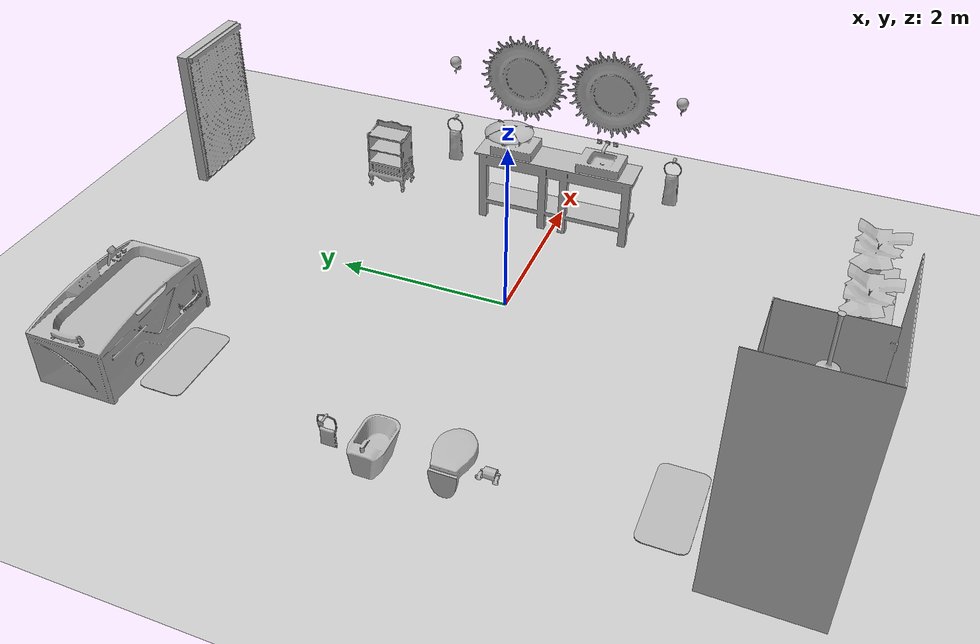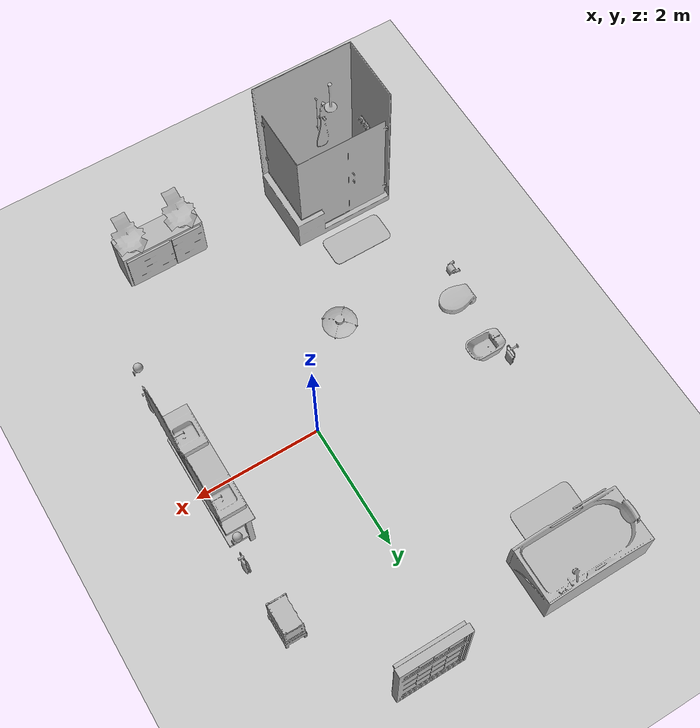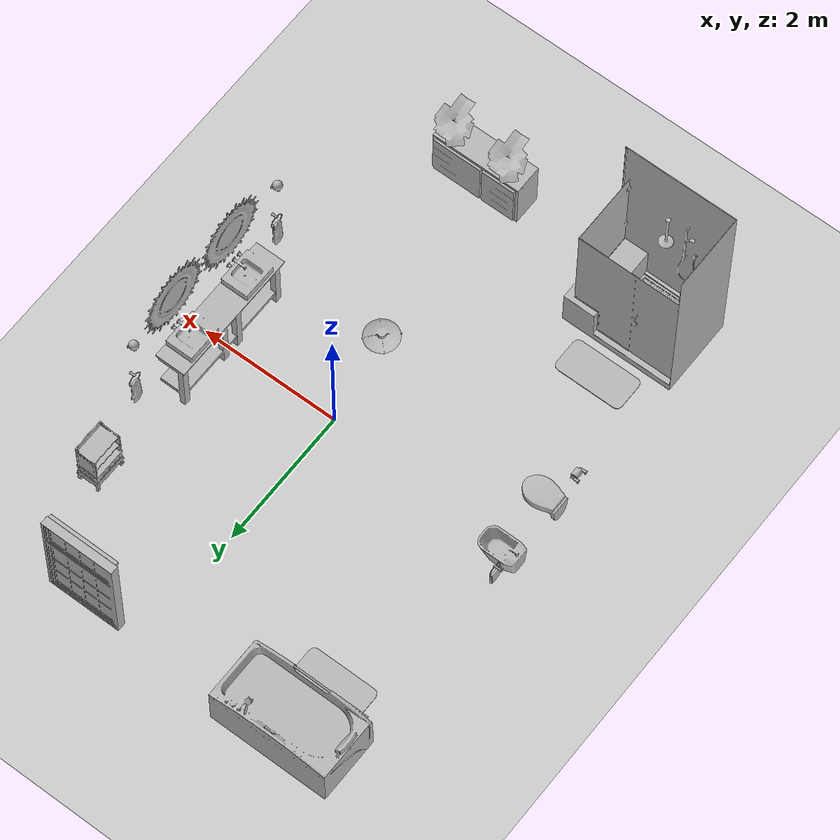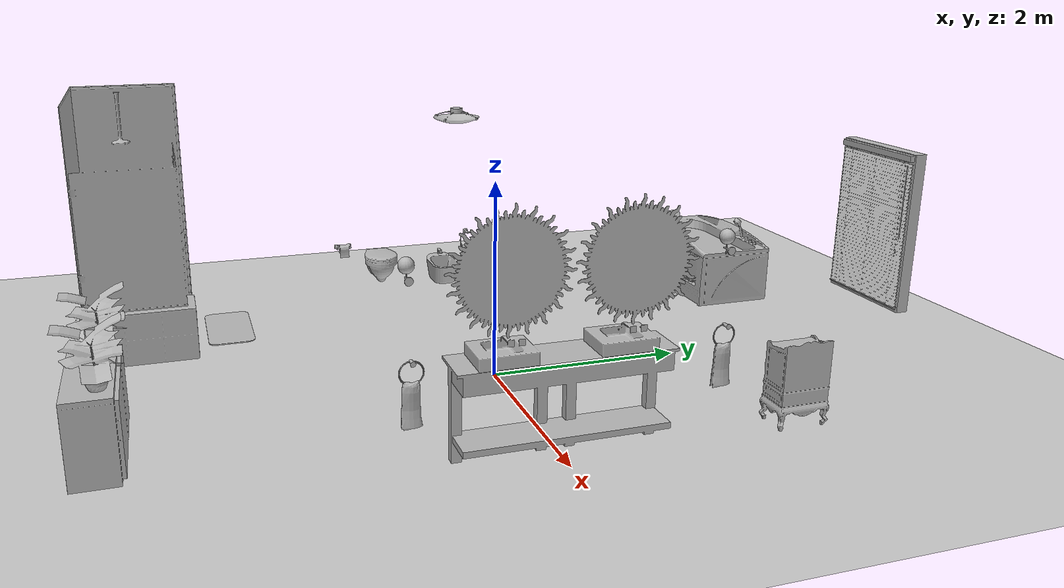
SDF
<sdf version="1.4">
 <world name="default">
  <light name="sun" type="directional">
   <pose>0 0 10 0 -0 0</pose>
   <diffuse>0.8 0.8 0.8 1</diffuse>
   <specular>0.2 0.2 0.2 1</specular>
   <attenuation>
    <range>1000</range>
    <constant>0.9</constant>
    <linear>0.01</linear>
    <quadratic>0.001</quadratic>
   </attenuation>
   <direction>-0.5 0.1 -0.9</direction>
  </light>
  <model name="ground_plane">
   <static>1</static>
   <link name="link">
    <collision name="collision">
     <geometry><plane><normal>0 0 1</normal><size>100 100</size></plane></geometry>
     <surface><friction><ode><mu>100</mu><mu2>50</mu2></ode></friction></surface>
    </collision>
    <visual name="visual">
     <cast_shadows>0</cast_shadows>
     <geometry><plane><normal>0 0 1</normal><size>100 100</size></plane></geometry>
     <material>
      <script><uri>file://media/materials/scripts/gazebo.material</uri><name>Gazebo/Grey</name></script>
     </material>
    </visual>
    <velocity_decay><linear>0</linear><angular>0</angular></velocity_decay>
   </link>
  </model>
  <physics type="ode">
   <max_step_size>0.001</max_step_size>
   <real_time_factor>1</real_time_factor>
   <real_time_update_rate>1000</real_time_update_rate>
   <gravity>0 0 -9.8</gravity>
  </physics>
  <scene><ambient>0.4 0.4 0.4 1</ambient><background>0.7 0.7 0.7 1</background><shadows>1</shadows></scene>
  <spherical_coordinates>
   <surface_model>EARTH_WGS84</surface_model>
   <latitude_deg>0</latitude_deg>
   <longitude_deg>0</longitude_deg>
   <elevation>0</elevation>
   <heading_deg>0</heading_deg>
  </spherical_coordinates>
  <model name="s__2012_0">
   <pose>0.621197 3.91481 0.65 0 0 -1.5708</pose>
   <static>1</static>
   <link name="link">
    <collision name="collision"><geometry><box><size>0.120003 1.05 2</size></box></geometry></collision>
    <visual name="visual"><geometry><mesh><uri>model://s__2012/s__2012.dae</uri></mesh></geometry></visual>
    <velocity_decay><linear>0</linear><angular>0</angular></velocity_decay>
   </link>
  </model>
  <model name="s__1697_0">
   <pose>-2.10495 3.47945 0 0 0 -1.5708</pose>
   <static>1</static>
   <link name="link">
    <collision name="collision"><geometry><box><size>0.97 1.75974 2</size></box></geometry></collision>
    <visual name="visual"><geometry><mesh><uri>model://s__1697/s__1697.dae</uri></mesh></geometry></visual>
    <velocity_decay><linear>0</linear><angular>0</angular></velocity_decay>
   </link>
  </model>
  <model name="s__1322_0">
   <pose>-2.16316 -3.3743 0 0 -0 1.5708</pose>
   <static>1</static>
   <link name="link">
    <collision name="collision"><geometry><box><size>1.11 1.63 2</size></box></geometry></collision>
    <visual name="visual"><geometry><mesh><uri>model://s__1322/s__1322.dae</uri></mesh></geometry></visual>
    <velocity_decay><linear>0</linear><angular>0</angular></velocity_decay>
   </link>
  </model>
  <model name="s__1943_0">
   <pose>1.72404 0.005748 0 0 -0 3.14159</pose>
   <static>1</static>
   <link name="link">
    <collision name="collision"><geometry><box><size>0.440002 1.95 2</size></box></geometry></collision>
    <visual name="visual"><geometry><mesh><uri>model://s__1943/s__1943.dae</uri></mesh></geometry></visual>
    <velocity_decay><linear>0</linear><angular>0</angular></velocity_decay>
   </link>
  </model>
  <model name="418_0">
   <pose>-2.68365 -0.554728 0.2 0 -0 0</pose>
   <static>1</static>
   <link name="link">
    <collision name="collision"><geometry><box><size>0.54 0.39 2</size></box></geometry></collision>
    <visual name="visual"><geometry><mesh><uri>model://418/418.dae</uri></mesh></geometry></visual>
    <velocity_decay><linear>0</linear><angular>0</angular></velocity_decay>
   </link>
  </model>
  <model name="453_0">
   <pose>-2.726 0.249275 0.14 0 -0 0</pose>
   <static>1</static>
   <link name="link">
    <collision name="collision"><geometry><box><size>0.57 0.36 2</size></box></geometry></collision>
    <visual name="visual"><geometry><mesh><uri>model://453/453.dae</uri></mesh></geometry></visual>
    <velocity_decay><linear>0</linear><angular>0</angular></velocity_decay>
   </link>
  </model>
  <model name="s__1559_0">
   <pose>1.9689 -0.534544 1.2 0 0 -3.14159</pose>
   <static>1</static>
   <link name="link">
    <collision name="collision"><geometry><box><size>0.02 1.09 2</size></box></geometry></collision>
    <visual name="visual"><geometry><mesh><uri>model://s__1559/s__1559.dae</uri></mesh></geometry></visual>
    <velocity_decay><linear>0</linear><angular>0</angular></velocity_decay>
   </link>
  </model>
  <model name="s__1559_1">
   <pose>1.97066 0.539813 1.2 0 0 -3.14159</pose>
   <static>1</static>
   <link name="link">
    <collision name="collision"><geometry><box><size>0.02 1.09 2</size></box></geometry></collision>
    <visual name="visual"><geometry><mesh><uri>model://s__1559/s__1559.dae</uri></mesh></geometry></visual>
    <velocity_decay><linear>0</linear><angular>0</angular></velocity_decay>
   </link>
  </model>
  <model name="s__1321_0">
   <pose>-2.93829 -0.974726 0.51 0 -0 0</pose>
   <static>1</static>
   <link name="link">
    <collision name="collision"><geometry><box><size>0.14 0.21 2</size></box></geometry></collision>
    <visual name="visual"><geometry><mesh><uri>model://s__1321/s__1321.dae</uri></mesh></geometry></visual>
    <velocity_decay><linear>0</linear><angular>0</angular></velocity_decay>
   </link>
  </model>
  <model name="s__1327_0">
   <pose>-2.94432 0.621272 0.3 0 -0 0</pose>
   <static>1</static>
   <link name="link">
    <collision name="collision"><geometry><box><size>0.13 0.2 2</size></box></geometry></collision>
    <visual name="visual"><geometry><mesh><uri>model://s__1327/s__1327.dae</uri></mesh></geometry></visual>
    <velocity_decay><linear>0</linear><angular>0</angular></velocity_decay>
   </link>
  </model>
  <model name="s__1326_0">
   <pose>1.92556 -1.32884 0.5 0 0 -3.14159</pose>
   <static>1</static>
   <link name="link">
    <collision name="collision"><geometry><box><size>0.11 0.21 2</size></box></geometry></collision>
    <visual name="visual"><geometry><mesh><uri>model://s__1326/s__1326.dae</uri></mesh></geometry></visual>
    <velocity_decay><linear>0</linear><angular>0</angular></velocity_decay>
   </link>
  </model>
  <model name="s__1326_1">
   <pose>1.92744 1.40614 0.5 0 0 -3.14159</pose>
   <static>1</static>
   <link name="link">
    <collision name="collision"><geometry><box><size>0.11 0.21 2</size></box></geometry></collision>
    <visual name="visual"><geometry><mesh><uri>model://s__1326/s__1326.dae</uri></mesh></geometry></visual>
    <velocity_decay><linear>0</linear><angular>0</angular></velocity_decay>
   </link>
  </model>
  <model name="s__433_0">
   <pose>-0.568439 -0.218729 2.49 0 -0 0</pose>
   <static>1</static>
   <link name="link">
    <collision name="collision"><geometry><box><size>0.46 0.46 2</size></box></geometry></collision>
    <visual name="visual"><geometry><mesh><uri>model://s__433/s__433.dae</uri></mesh></geometry></visual>
    <velocity_decay><linear>0</linear><angular>0</angular></velocity_decay>
   </link>
  </model>
  <model name="127_0">
   <pose>1.91407 -1.35032 1.7 0 -0 3.14159</pose>
   <static>1</static>
   <link name="link">
    <collision name="collision"><geometry><box><size>0.149778 0.13 2</size></box></geometry></collision>
    <visual name="visual"><geometry><mesh><uri>model://127/127.dae</uri></mesh></geometry></visual>
    <velocity_decay><linear>0</linear><angular>0</angular></velocity_decay>
   </link>
  </model>
  <model name="127_1">
   <pose>1.91764 1.37999 1.7 0 -0 3.14159</pose>
   <static>1</static>
   <link name="link">
    <collision name="collision"><geometry><box><size>0.149778 0.13 2</size></box></geometry></collision>
    <visual name="visual"><geometry><mesh><uri>model://127/127.dae</uri></mesh></geometry></visual>
    <velocity_decay><linear>0</linear><angular>0</angular></velocity_decay>
   </link>
  </model>
  <model name="235_0">
   <pose>-2.16098 -2.45615 0 0 0 -1.5708</pose>
   <static>1</static>
   <link name="link">
    <collision name="collision"><geometry><box><size>0.5 1 0</size></box></geometry></collision>
    <visual name="visual"><geometry><mesh><uri>model://235/235.dae</uri></mesh></geometry></visual>
    <velocity_decay><linear>0</linear><angular>0</angular></velocity_decay>
   </link>
  </model>
  <model name="235_1">
   <pose>-2.1442 2.7568 0 0 0 -1.5708</pose>
   <static>1</static>
   <link name="link">
    <collision name="collision"><geometry><box><size>0.5 1 0</size></box></geometry></collision>
    <visual name="visual"><geometry><mesh><uri>model://235/235.dae</uri></mesh></geometry></visual>
    <velocity_decay><linear>0</linear><angular>0</angular></velocity_decay>
   </link>
  </model>
  <model name="s__1713_0">
   <pose>0.559563 -3.73639 0 0 -0 1.5708</pose>
   <static>1</static>
   <link name="link">
    <collision name="collision"><geometry><box><size>0.45 1.32 2</size></box></geometry></collision>
    <visual name="visual"><geometry><mesh><uri>model://s__1713/s__1713.dae</uri></mesh></geometry></visual>
    <velocity_decay><linear>0</linear><angular>0</angular></velocity_decay>
   </link>
  </model>
  <model name="s__1683_0">
   <pose>1.80126 2.26527 0 0 0 -3.14159</pose>
   <static>1</static>
   <link name="link">
    <collision name="collision"><geometry><box><size>0.34 0.51 2</size></box></geometry></collision>
    <visual name="visual"><geometry><mesh><uri>model://s__1683/s__1683.dae</uri></mesh></geometry></visual>
    <velocity_decay><linear>0</linear><angular>0</angular></velocity_decay>
   </link>
  </model>
  <model name="737_0">
   <pose>1.00356 -3.70883 0.770936 0 -0 0</pose>
   <static>1</static>
   <link name="link">
    <collision name="collision"><geometry><box><size>0.495187 0.54313 2</size></box></geometry></collision>
    <visual name="visual"><geometry><mesh><uri>model://737/737.dae</uri></mesh></geometry></visual>
    <velocity_decay><linear>0</linear><angular>0</angular></velocity_decay>
   </link>
  </model>
  <model name="737_1">
   <pose>0.17556 -3.70686 0.770936 0 -0 0</pose>
   <static>1</static>
   <link name="link">
    <collision name="collision"><geometry><box><size>0.495187 0.54313 2</size></box></geometry></collision>
    <visual name="visual"><geometry><mesh><uri>model://737/737.dae</uri></mesh></geometry></visual>
    <velocity_decay><linear>0</linear><angular>0</angular></velocity_decay>
   </link>
  </model>
  <model name="747_0">
   <pose>0.631565 3.82808 0.69 0 0 -1.5708</pose>
   <static>1</static>
   <link name="link">
    <collision name="collision"><geometry><box><size>0.05 1 2</size></box></geometry></collision>
    <visual name="visual"><geometry><mesh><uri>model://747/747.dae</uri></mesh></geometry></visual>
    <velocity_decay><linear>0</linear><angular>0</angular></velocity_decay>
   </link>
  </model>
 </world>
</sdf>
